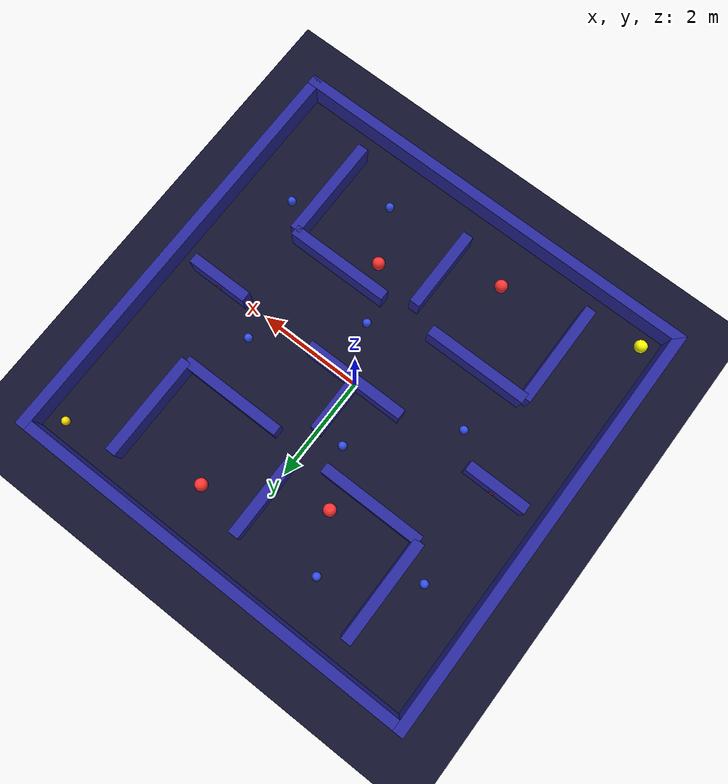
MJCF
<mujoco>
  <option gravity="0 0 -50" integrator="RK4" timestep="0.01"/>
  <visual><map znear="0.01"/></visual>

  <asset>
    <texture name="grid" type="2d" builtin="checker" width="512" height="512"
             rgb1="0.05 0.05 0.15" rgb2="0.08 0.08 0.2"/>
    <material name="grid_mat" texture="grid" texrepeat="10 10" reflectance="0.1"/>
    <material name="wall_mat" rgba="0.15 0.15 0.6 1"/>
    <material name="ghost_mat" rgba="1.0 0.2 0.2 1"/>
    <material name="dot_mat" rgba="0.2 0.3 0.9 1"/>
  </asset>

  <default>
    <geom friction="1 0.01 0.001" solref="0.02 1" solimp="0.9 0.95 0.001"/>
    <site type="sphere" size="0.08"/>
    <default class="dynamic">
      <geom type="sphere" size="0.12" rgba="1 0.2 0.2 1"/>
    </default>
    <default class="static">
      <geom type="sphere" size="0.08" rgba="0.2 0.3 0.9 1"/>
    </default>
  </default>

  <worldbody>
    <camera name="top" pos="0 0 12" xyaxes="1 0 0 0 1 0"/>

    <!-- Floor -->
    <geom name="floor" type="plane" size="5 5 0.1" material="grid_mat"/>

    <!-- OUTER BOUNDARY WALLS                     -->
    <geom name="wall_left"  type="box" pos="-4 0 0.15" size="0.1 4.1 0.3" material="wall_mat"/>
    <geom name="wall_right" type="box" pos=" 4 0 0.15" size="0.1 4.1 0.3" material="wall_mat"/>
    <geom name="wall_top"   type="box" pos="0 4 0.15"  size="4.1 0.1 0.3" material="wall_mat"/>
    <geom name="wall_bot"   type="box" pos="0 -4 0.15" size="4.1 0.1 0.3" material="wall_mat"/>

    <!-- MAZE INTERIOR WALLS                      -->
    <!-- Designed with clear corridors from       -->
    <!-- start (-3.6,-3.6) to goal (3.6,3.6)      -->

    <!-- Central T-junction block -->
    <geom name="maze_c1" type="box" pos="0 0 0.15" size="1.0 0.1 0.3" material="wall_mat"/>
    <geom name="maze_c2" type="box" pos="0 0.6 0.15" size="0.1 0.5 0.3" material="wall_mat"/>

    <!-- Bottom-left quadrant -->
    <geom name="maze_bl1" type="box" pos="-2.5 -2.5 0.15" size="0.1 1.0 0.3" material="wall_mat"/>
    <geom name="maze_bl2" type="box" pos="-1.5 -1.5 0.15" size="1.0 0.1 0.3" material="wall_mat"/>

    <!-- Bottom-right quadrant -->
    <geom name="maze_br1" type="box" pos="2.5 -2.5 0.15" size="0.1 1.0 0.3" material="wall_mat"/>
    <geom name="maze_br2" type="box" pos="1.5 -1.5 0.15" size="1.0 0.1 0.3" material="wall_mat"/>

    <!-- Top-left quadrant -->
    <geom name="maze_tl1" type="box" pos="-2.5 2.5 0.15" size="0.1 1.0 0.3" material="wall_mat"/>
    <geom name="maze_tl2" type="box" pos="-1.5 1.5 0.15" size="1.0 0.1 0.3" material="wall_mat"/>

    <!-- Top-right quadrant -->
    <geom name="maze_tr1" type="box" pos="2.5 2.5 0.15" size="0.1 1.0 0.3" material="wall_mat"/>
    <geom name="maze_tr2" type="box" pos="1.5 1.5 0.15" size="1.0 0.1 0.3" material="wall_mat"/>

    <!-- Mid horizontal corridors -->
    <geom name="maze_mh1" type="box" pos="-3.0  0 0.15" size="0.6 0.1 0.3" material="wall_mat"/>
    <geom name="maze_mh2" type="box" pos=" 3.0  0 0.15" size="0.6 0.1 0.3" material="wall_mat"/>

    <!-- Mid vertical corridors -->
    <geom name="maze_mv1" type="box" pos="0 -2.5 0.15" size="0.1 0.8 0.3" material="wall_mat"/>
    <geom name="maze_mv2" type="box" pos="0  2.5 0.15" size="0.1 0.8 0.3" material="wall_mat"/>

    <!-- Start / Goal Markers                     -->
    <site name="start" pos="-3.6 -3.6 0.02" rgba="0 1 0 1"/>
    <site name="goal"  pos=" 3.6  3.6 0.02" rgba="1 0.85 0 1"/>

    <!-- DYNAMIC Obstacles (cat1-cat6) - Ghosts   -->
    <body name="cat1" pos="-1.0 -3.0 0.12"><freejoint/><geom class="dynamic"/></body>
    <body name="cat2" pos=" 1.0 -2.0 0.12"><freejoint/><geom class="dynamic"/></body>
    <body name="cat3" pos="-1.0  2.0 0.12"><freejoint/><geom class="dynamic"/></body>
    <body name="cat4" pos=" 1.0  3.0 0.12"><freejoint/><geom class="dynamic"/></body>
    <body name="cat5" pos=" 3.0  0.0 0.12"><freejoint/><geom class="dynamic"/></body>
    <body name="cat6" pos="-3.0  0.0 0.12"><freejoint/><geom class="dynamic"/></body>

    <!-- STATIC Obstacles (cat7-cat15) - Dots     -->
    <body name="cat7"  pos="-2.0 -0.5 0.08"><freejoint/><geom class="static"/></body>
    <body name="cat8"  pos=" 2.0  0.5 0.08"><freejoint/><geom class="static"/></body>
    <body name="cat9"  pos="-0.5  1.0 0.08"><freejoint/><geom class="static"/></body>
    <body name="cat10" pos=" 0.5 -1.0 0.08"><freejoint/><geom class="static"/></body>
    <body name="cat11" pos="-3.0  2.0 0.08"><freejoint/><geom class="static"/></body>
    <body name="cat12" pos=" 3.0 -2.0 0.08"><freejoint/><geom class="static"/></body>
    <body name="cat13" pos="-1.5  3.0 0.08"><freejoint/><geom class="static"/></body>
    <body name="cat14" pos=" 1.5 -3.0 0.08"><freejoint/><geom class="static"/></body>
    <body name="cat15" pos=" 0.0  0.0 0.08"><freejoint/><geom class="static"/></body>

    <!-- Robot                                    -->
    <body name="robot" pos="-3.6 -3.6 0.12">
      <freejoint/>
      <geom name="robot_geom" type="sphere" size="0.12" rgba="1 1 0 1"/>
    </body>
  </worldbody>
</mujoco>
